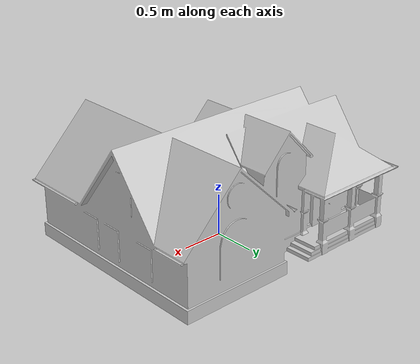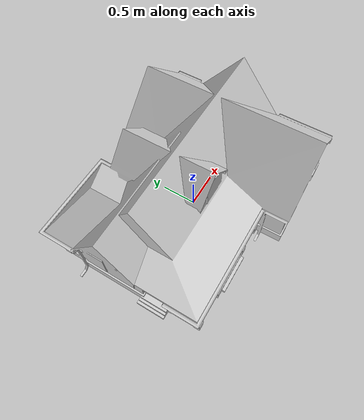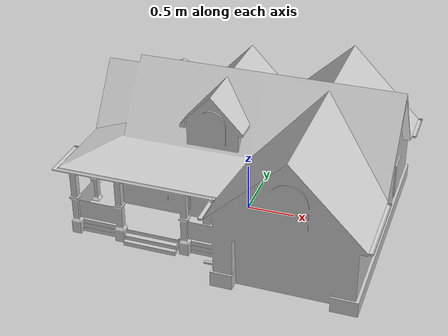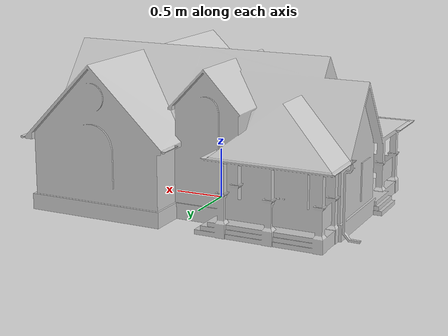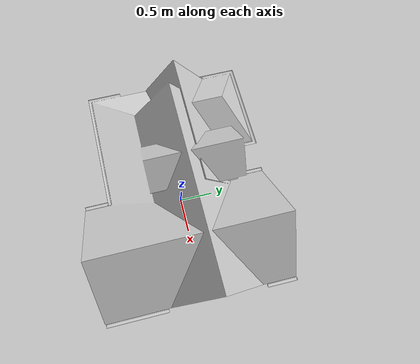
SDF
<?xml version="1.0" ?>
<sdf version="1.5">
  <model name="House 1">
    <static>true</static>
    <link name="link">
      <collision name="collision">
        <geometry>
          <mesh>
            <uri>model://house_1/meshes/house_1.dae</uri>
            <scale>0.3 0.3 0.3</scale>
          </mesh>
        </geometry>
      </collision>
      <visual name="visual">
        <geometry>
          <mesh>
            <uri>model://house_1/meshes/house_1.dae</uri>
            <scale>0.3 0.3 0.3</scale>
          </mesh>
        </geometry>
        <material>
          <ambient>0.8 0.8 0.8 1.0</ambient>
          <diffuse>0.8 0.8 0.8 1.0</diffuse>
          <specular>0.2 0.2 0.2 1.0</specular>

          <pbr>
            <metal>
              <albedo_map>model://house_1/materials/textures/House_1_Diffuse.png</albedo_map>
            </metal>
          </pbr>
        </material>
      </visual>
    </link>
  </model>
</sdf>
